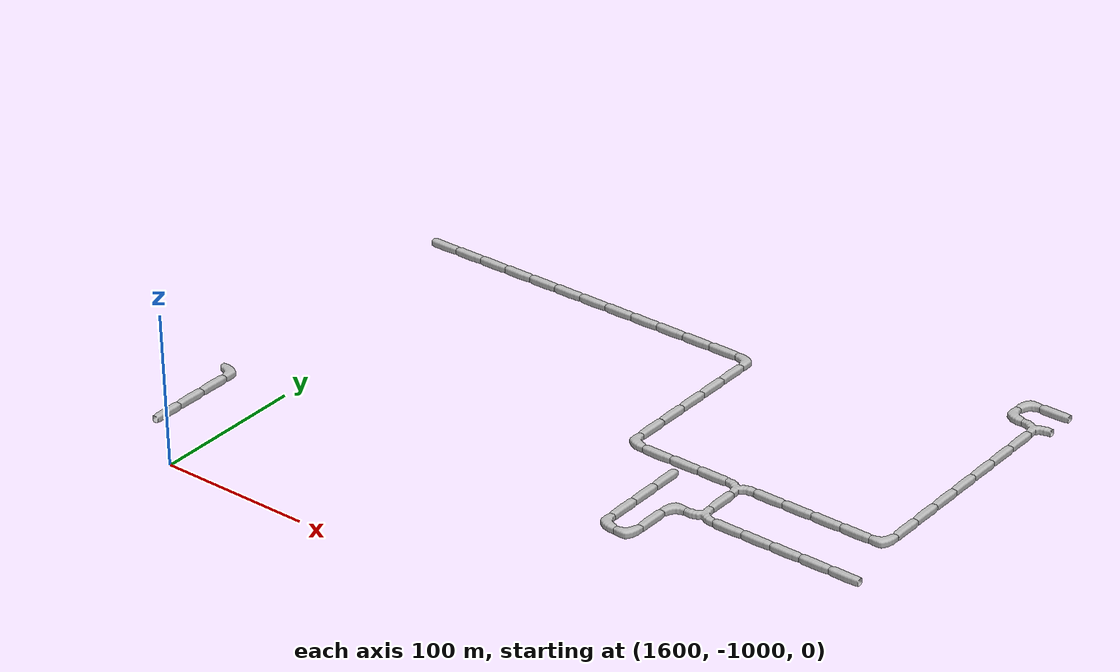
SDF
<sdf version="1.6">
 <world name="cave_32000_32">
  <include>
   <static>true</static>
   <name>cave_78_-45</name>
   <pose>1560 -900 0 0 0 3.141592653589793</pose>
   <uri>model://cave_L_20m</uri>
  </include>
  <include>
   <static>true</static>
   <name>cave_78_-46</name>
   <pose>1560 -920 0 0 0 0.0</pose>
   <uri>model://cave_straight_20m</uri>
  </include>
  <include>
   <static>true</static>
   <name>cave_78_-47</name>
   <pose>1560 -940 0 0 0 0.0</pose>
   <uri>model://cave_straight_20m</uri>
  </include>
  <include>
   <static>true</static>
   <name>cave_78_-48</name>
   <pose>1560 -960 0 0 0 0.0</pose>
   <uri>model://cave_straight_20m</uri>
  </include>
  <include>
   <static>true</static>
   <name>cave_78_-35</name>
   <pose>1560 -700 0 0 0 1.5707963267948966</pose>
   <uri>model://cave_straight_20m</uri>
  </include>
  <include>
   <static>true</static>
   <name>cave_79_-35</name>
   <pose>1580 -700 0 0 0 1.5707963267948966</pose>
   <uri>model://cave_straight_20m</uri>
  </include>
  <include>
   <static>true</static>
   <name>cave_80_-35</name>
   <pose>1600 -700 0 0 0 1.5707963267948966</pose>
   <uri>model://cave_straight_20m</uri>
  </include>
  <include>
   <static>true</static>
   <name>cave_81_-35</name>
   <pose>1620 -700 0 0 0 1.5707963267948966</pose>
   <uri>model://cave_straight_20m</uri>
  </include>
  <include>
   <static>true</static>
   <name>cave_82_-35</name>
   <pose>1640 -700 0 0 0 1.5707963267948966</pose>
   <uri>model://cave_straight_20m</uri>
  </include>
  <include>
   <static>true</static>
   <name>cave_83_-35</name>
   <pose>1660 -700 0 0 0 1.5707963267948966</pose>
   <uri>model://cave_straight_20m</uri>
  </include>
  <include>
   <static>true</static>
   <name>cave_84_-35</name>
   <pose>1680 -700 0 0 0 1.5707963267948966</pose>
   <uri>model://cave_straight_20m</uri>
  </include>
  <include>
   <static>true</static>
   <name>cave_85_-35</name>
   <pose>1700 -700 0 0 0 1.5707963267948966</pose>
   <uri>model://cave_straight_20m</uri>
  </include>
  <include>
   <static>true</static>
   <name>cave_86_-35</name>
   <pose>1720 -700 0 0 0 1.5707963267948966</pose>
   <uri>model://cave_straight_20m</uri>
  </include>
  <include>
   <static>true</static>
   <name>cave_87_-35</name>
   <pose>1740 -700 0 0 0 1.5707963267948966</pose>
   <uri>model://cave_straight_20m</uri>
  </include>
  <include>
   <static>true</static>
   <name>cave_88_-35</name>
   <pose>1760 -700 0 0 0 1.5707963267948966</pose>
   <uri>model://cave_straight_20m</uri>
  </include>
  <include>
   <static>true</static>
   <name>cave_89_-35</name>
   <pose>1780 -700 0 0 0 1.5707963267948966</pose>
   <uri>model://cave_straight_20m</uri>
  </include>
  <include>
   <static>true</static>
   <name>cave_90_-35</name>
   <pose>1800 -700 0 0 0 3.141592653589793</pose>
   <uri>model://cave_L_20m</uri>
  </include>
  <include>
   <static>true</static>
   <name>cave_90_-36</name>
   <pose>1800 -720 0 0 0 0.0</pose>
   <uri>model://cave_straight_20m</uri>
  </include>
  <include>
   <static>true</static>
   <name>cave_90_-37</name>
   <pose>1800 -740 0 0 0 0.0</pose>
   <uri>model://cave_straight_20m</uri>
  </include>
  <include>
   <static>true</static>
   <name>cave_90_-38</name>
   <pose>1800 -760 0 0 0 0.0</pose>
   <uri>model://cave_straight_20m</uri>
  </include>
  <include>
   <static>true</static>
   <name>cave_90_-39</name>
   <pose>1800 -780 0 0 0 0.0</pose>
   <uri>model://cave_straight_20m</uri>
  </include>
  <include>
   <static>true</static>
   <name>cave_90_-40</name>
   <pose>1800 -800 0 0 0 0.0</pose>
   <uri>model://cave_straight_20m</uri>
  </include>
  <include>
   <static>true</static>
   <name>cave_90_-41</name>
   <pose>1800 -820 0 0 0 0.0</pose>
   <uri>model://cave_L_20m</uri>
  </include>
  <include>
   <static>true</static>
   <name>cave_91_-41</name>
   <pose>1820 -820 0 0 0 1.5707963267948966</pose>
   <uri>model://cave_straight_20m</uri>
  </include>
  <include>
   <static>true</static>
   <name>cave_92_-41</name>
   <pose>1840 -820 0 0 0 1.5707963267948966</pose>
   <uri>model://cave_straight_20m</uri>
  </include>
  <include>
   <static>true</static>
   <name>cave_93_-41</name>
   <pose>1860 -820 0 0 0 1.5707963267948966</pose>
   <uri>model://cave_straight_20m</uri>
  </include>
  <include>
   <static>true</static>
   <name>cave_94_-41</name>
   <pose>1880 -820 0 0 0 3.141592653589793</pose>
   <uri>model://cave_3way_20m</uri>
  </include>
  <include>
   <static>true</static>
   <name>cave_95_-41</name>
   <pose>1900 -820 0 0 0 1.5707963267948966</pose>
   <uri>model://cave_straight_20m</uri>
  </include>
  <include>
   <static>true</static>
   <name>cave_96_-41</name>
   <pose>1920 -820 0 0 0 1.5707963267948966</pose>
   <uri>model://cave_straight_20m</uri>
  </include>
  <include>
   <static>true</static>
   <name>cave_97_-41</name>
   <pose>1940 -820 0 0 0 1.5707963267948966</pose>
   <uri>model://cave_straight_20m</uri>
  </include>
  <include>
   <static>true</static>
   <name>cave_98_-41</name>
   <pose>1960 -820 0 0 0 1.5707963267948966</pose>
   <uri>model://cave_straight_20m</uri>
  </include>
  <include>
   <static>true</static>
   <name>cave_99_-41</name>
   <pose>1980 -820 0 0 0 1.5707963267948966</pose>
   <uri>model://cave_L_20m</uri>
  </include>
  <include>
   <static>true</static>
   <name>cave_99_-40</name>
   <pose>1980 -800 0 0 0 0.0</pose>
   <uri>model://cave_straight_20m</uri>
  </include>
  <include>
   <static>true</static>
   <name>cave_99_-39</name>
   <pose>1980 -780 0 0 0 0.0</pose>
   <uri>model://cave_straight_20m</uri>
  </include>
  <include>
   <static>true</static>
   <name>cave_99_-38</name>
   <pose>1980 -760 0 0 0 0.0</pose>
   <uri>model://cave_straight_20m</uri>
  </include>
  <include>
   <static>true</static>
   <name>cave_99_-37</name>
   <pose>1980 -740 0 0 0 0.0</pose>
   <uri>model://cave_straight_20m</uri>
  </include>
  <include>
   <static>true</static>
   <name>cave_99_-36</name>
   <pose>1980 -720 0 0 0 0.0</pose>
   <uri>model://cave_straight_20m</uri>
  </include>
  <include>
   <static>true</static>
   <name>cave_99_-35</name>
   <pose>1980 -700 0 0 0 0.0</pose>
   <uri>model://cave_straight_20m</uri>
  </include>
  <include>
   <static>true</static>
   <name>cave_99_-34</name>
   <pose>1980 -680 0 0 0 0.0</pose>
   <uri>model://cave_straight_20m</uri>
  </include>
  <include>
   <static>true</static>
   <name>cave_99_-33</name>
   <pose>1980 -660 0 0 0 3.141592653589793</pose>
   <uri>model://cave_3way_20m</uri>
  </include>
  <include>
   <static>true</static>
   <name>cave_98_-33</name>
   <pose>1960 -660 0 0 0 0.0</pose>
   <uri>model://cave_L_20m</uri>
  </include>
  <include>
   <static>true</static>
   <name>cave_98_-32</name>
   <pose>1960 -640 0 0 0 -1.5707963267948966</pose>
   <uri>model://cave_L_20m</uri>
  </include>
  <include>
   <static>true</static>
   <name>cave_99_-32</name>
   <pose>1980 -640 0 0 0 1.5707963267948966</pose>
   <uri>model://cave_straight_20m</uri>
  </include>
  <include>
   <static>true</static>
   <name>cave_94_-42</name>
   <pose>1880 -840 0 0 0 0.0</pose>
   <uri>model://cave_straight_20m</uri>
  </include>
  <include>
   <static>true</static>
   <name>cave_94_-43</name>
   <pose>1880 -860 0 0 0 0.0</pose>
   <uri>model://cave_3way_20m</uri>
  </include>
  <include>
   <static>true</static>
   <name>cave_95_-43</name>
   <pose>1900 -860 0 0 0 1.5707963267948966</pose>
   <uri>model://cave_straight_20m</uri>
  </include>
  <include>
   <static>true</static>
   <name>cave_96_-43</name>
   <pose>1920 -860 0 0 0 1.5707963267948966</pose>
   <uri>model://cave_straight_20m</uri>
  </include>
  <include>
   <static>true</static>
   <name>cave_97_-43</name>
   <pose>1940 -860 0 0 0 1.5707963267948966</pose>
   <uri>model://cave_straight_20m</uri>
  </include>
  <include>
   <static>true</static>
   <name>cave_98_-43</name>
   <pose>1960 -860 0 0 0 1.5707963267948966</pose>
   <uri>model://cave_straight_20m</uri>
  </include>
  <include>
   <static>true</static>
   <name>cave_99_-43</name>
   <pose>1980 -860 0 0 0 1.5707963267948966</pose>
   <uri>model://cave_straight_20m</uri>
  </include>
  <include>
   <static>true</static>
   <name>cave_93_-43</name>
   <pose>1860 -860 0 0 0 -1.5707963267948966</pose>
   <uri>model://cave_L_20m</uri>
  </include>
  <include>
   <static>true</static>
   <name>cave_93_-44</name>
   <pose>1860 -880 0 0 0 0.0</pose>
   <uri>model://cave_straight_20m</uri>
  </include>
  <include>
   <static>true</static>
   <name>cave_93_-45</name>
   <pose>1860 -900 0 0 0 1.5707963267948966</pose>
   <uri>model://cave_L_20m</uri>
  </include>
  <include>
   <static>true</static>
   <name>cave_92_-45</name>
   <pose>1840 -900 0 0 0 0.0</pose>
   <uri>model://cave_L_20m</uri>
  </include>
  <include>
   <static>true</static>
   <name>cave_92_-44</name>
   <pose>1840 -880 0 0 0 0.0</pose>
   <uri>model://cave_straight_20m</uri>
  </include>
  <include>
   <static>true</static>
   <name>cave_92_-43</name>
   <pose>1840 -860 0 0 0 0.0</pose>
   <uri>model://cave_straight_20m</uri>
  </include>
  <include>
   <static>true</static>
   <name>cave_92_-42</name>
   <pose>1840 -840 0 0 0 0.0</pose>
   <uri>model://cave_straight_20m</uri>
  </include>
 </world>
</sdf>
